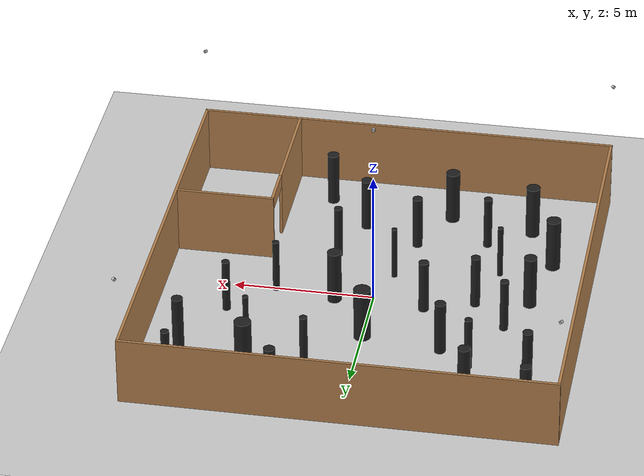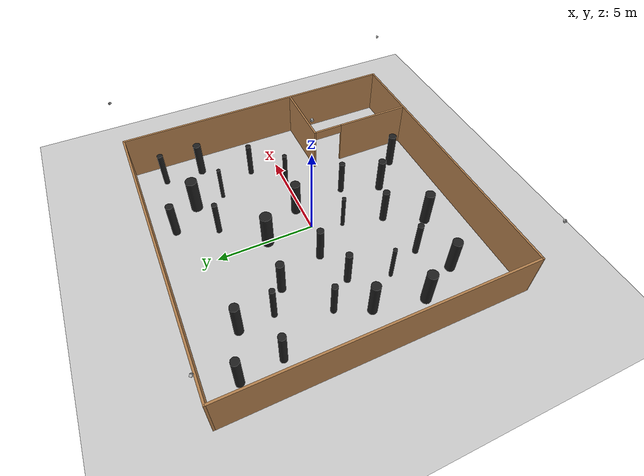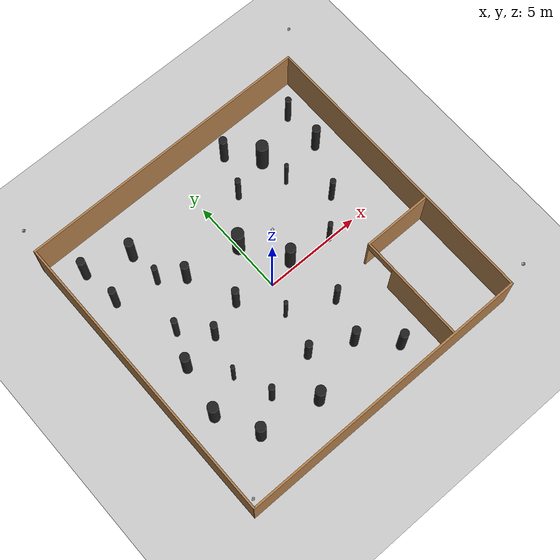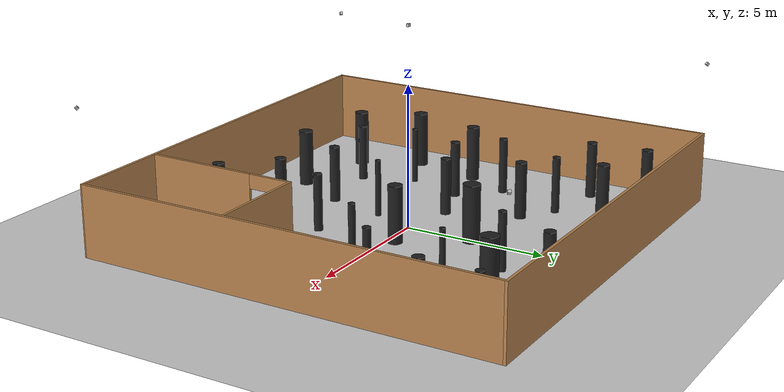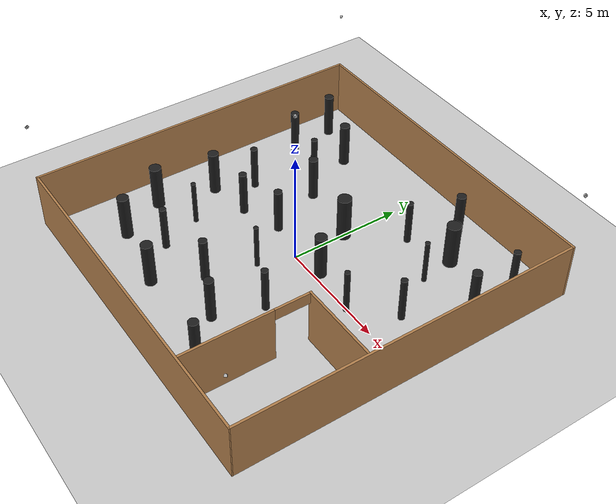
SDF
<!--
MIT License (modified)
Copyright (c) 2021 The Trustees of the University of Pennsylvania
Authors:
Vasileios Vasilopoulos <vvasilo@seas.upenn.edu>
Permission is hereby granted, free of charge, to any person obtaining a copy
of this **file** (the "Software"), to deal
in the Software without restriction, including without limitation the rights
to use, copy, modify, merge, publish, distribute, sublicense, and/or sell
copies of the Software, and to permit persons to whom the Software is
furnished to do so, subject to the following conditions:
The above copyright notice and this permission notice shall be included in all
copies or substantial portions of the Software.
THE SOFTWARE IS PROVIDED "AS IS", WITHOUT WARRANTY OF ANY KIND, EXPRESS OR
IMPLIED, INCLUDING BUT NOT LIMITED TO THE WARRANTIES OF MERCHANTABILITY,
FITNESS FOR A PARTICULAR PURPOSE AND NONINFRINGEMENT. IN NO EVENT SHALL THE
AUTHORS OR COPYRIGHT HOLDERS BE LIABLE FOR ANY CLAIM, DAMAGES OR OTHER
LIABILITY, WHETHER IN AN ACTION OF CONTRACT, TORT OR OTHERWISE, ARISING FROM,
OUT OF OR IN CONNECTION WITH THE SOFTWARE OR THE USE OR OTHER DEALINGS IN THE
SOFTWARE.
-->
<sdf version="1.6">
 <world name="default">
  <model name="ground_plane">
   <static>1</static>
   <link name="link">
    <collision name="collision">
     <geometry><plane><normal>0 0 1</normal><size>100 100</size></plane></geometry>
     <surface><friction><ode><mu>100</mu><mu2>50</mu2></ode></friction></surface>
    </collision>
    <visual name="visual">
     <cast_shadows>0</cast_shadows>
     <geometry><plane><normal>0 0 1</normal><size>100 100</size></plane></geometry>
     <material>
      <script><uri>file://media/materials/scripts/gazebo.material</uri><name>Gazebo/Grey</name></script>
     </material>
    </visual>
   </link>
  </model>
  <model name="building">
   <link name="Wall_0">
    <collision name="Wall_0_Collision">
     <geometry><box><size>15.1 0.1 2.5</size></box></geometry>
     <pose>0 0 1.25 0 -0 0</pose>
    </collision>
    <visual name="Wall_0_Visual">
     <pose>0 0 1.25 0 -0 0</pose>
     <geometry><box><size>15.1 0.1 2.5</size></box></geometry>
     <material>
      <script><uri>file://media/materials/scripts/gazebo.material</uri><name>Gazebo/Wood</name></script>
      <ambient>1 1 1 1</ambient>
     </material>
     <meta><layer>0</layer></meta>
    </visual>
    <pose>0 -7.5 0 0 -0 0</pose>
   </link>
   <link name="Wall_1">
    <collision name="Wall_1_Collision">
     <geometry><box><size>15 0.1 2.5</size></box></geometry>
     <pose>0 0 1.25 0 -0 0</pose>
    </collision>
    <visual name="Wall_1_Visual">
     <pose>0 0 1.25 0 -0 0</pose>
     <geometry><box><size>15 0.1 2.5</size></box></geometry>
     <material>
      <script><uri>file://media/materials/scripts/gazebo.material</uri><name>Gazebo/Wood</name></script>
      <ambient>1 1 1 1</ambient>
     </material>
     <meta><layer>0</layer></meta>
    </visual>
    <pose>7.5 0 0 0 -0 1.5708</pose>
   </link>
   <link name="Wall_2">
    <collision name="Wall_2_Collision">
     <geometry><box><size>15.1 0.1 2.5</size></box></geometry>
     <pose>0 0 1.25 0 -0 0</pose>
    </collision>
    <visual name="Wall_2_Visual">
     <pose>0 0 1.25 0 -0 0</pose>
     <geometry><box><size>15.1 0.1 2.5</size></box></geometry>
     <material>
      <script><uri>file://media/materials/scripts/gazebo.material</uri><name>Gazebo/Wood</name></script>
      <ambient>1 1 1 1</ambient>
     </material>
     <meta><layer>0</layer></meta>
    </visual>
    <pose>0 7.5 0 0 -0 3.14159</pose>
   </link>
   <link name="Wall_3">
    <collision name="Wall_3_Collision">
     <geometry><box><size>15 0.1 2.5</size></box></geometry>
     <pose>0 0 1.25 0 -0 0</pose>
    </collision>
    <visual name="Wall_3_Visual">
     <pose>0 0 1.25 0 -0 0</pose>
     <geometry><box><size>15 0.1 2.5</size></box></geometry>
     <material>
      <script><uri>file://media/materials/scripts/gazebo.material</uri><name>Gazebo/Wood</name></script>
      <ambient>1 1 1 1</ambient>
     </material>
     <meta><layer>0</layer></meta>
    </visual>
    <pose>-7.5 0 0 0 -0 -1.5708</pose>
   </link>
   <link name="Wall_4">
    <collision name="Wall_4_Collision">
     <geometry><box><size>0.1 3.5 2.5</size></box></geometry>
     <pose>0 0 1.25 0 -0 0</pose>
    </collision>
    <visual name="Wall_4_Visual">
     <pose>0 0 1.25 0 -0 0</pose>
     <geometry><box><size>0.1 3.5 2.5</size></box></geometry>
     <material>
      <script><uri>file://media/materials/scripts/gazebo.material</uri><name>Gazebo/Wood</name></script>
      <ambient>1 1 1 1</ambient>
     </material>
     <meta><layer>0</layer></meta>
    </visual>
    <pose>5.7 -2 0 0 -0 -1.5708</pose>
   </link>
   <link name="Wall_5a">
    <collision name="Wall_5a_Collision">
     <geometry><box><size>3.9 0.1 2.5</size></box></geometry>
     <pose>0 0 1.25 0 -0 0</pose>
    </collision>
    <visual name="Wall_5a_Visual">
     <pose>0 0 1.25 0 -0 0</pose>
     <geometry><box><size>3.9 0.1 2.5</size></box></geometry>
     <material>
      <script><uri>file://media/materials/scripts/gazebo.material</uri><name>Gazebo/Wood</name></script>
      <ambient>1 1 1 1</ambient>
     </material>
     <meta><layer>0</layer></meta>
    </visual>
    <pose>4 -5.5 0 0 -0 -1.5708</pose>
   </link>
   <link name="Wall_5b">
    <collision name="Wall_5b_Collision">
     <geometry><box><size>1.5 0.1 0.5</size></box></geometry>
     <pose>0 0 2.25 0 -0 0</pose>
    </collision>
    <visual name="Wall_5b_Visual">
     <pose>0 0 2.25 0 -0 0</pose>
     <geometry><box><size>1.5 0.1 0.5</size></box></geometry>
     <material>
      <script><uri>file://media/materials/scripts/gazebo.material</uri><name>Gazebo/Wood</name></script>
      <ambient>1 1 1 1</ambient>
     </material>
     <meta><layer>0</layer></meta>
    </visual>
    <pose>4 -2.8 0 0 -0 -1.5708</pose>
   </link>
   <static>1</static>
  </model>
  <model name="cylinder_1">
   <link name="link_0">
    <pose>-5 -5 1 0 -0 0</pose>
    <visual name="visual">
     <geometry><cylinder><radius>0.25</radius><length>2</length></cylinder></geometry>
     <material>
      <lighting>1</lighting>
      <script><uri>file://media/materials/scripts/gazebo.material</uri><name>Gazebo/Black</name></script>
      <shader type="pixel"/>
     </material>
    </visual>
    <collision name="collision">
     <geometry><cylinder><radius>0.25</radius><length>2</length></cylinder></geometry>
    </collision>
   </link>
   <static>1</static>
  </model>
  <model name="cylinder_2">
   <link name="link_0">
    <pose>-3.5 -4 1 0 -0 0</pose>
    <visual name="visual">
     <geometry><cylinder><radius>0.15</radius><length>2</length></cylinder></geometry>
     <material>
      <lighting>1</lighting>
      <script><uri>file://media/materials/scripts/gazebo.material</uri><name>Gazebo/Black</name></script>
      <shader type="pixel"/>
     </material>
    </visual>
    <collision name="collision">
     <geometry><cylinder><radius>0.15</radius><length>2</length></cylinder></geometry>
    </collision>
   </link>
   <static>1</static>
  </model>
  <model name="cylinder_3">
   <link name="link_0">
    <pose>-6 -3 1 0 -0 0</pose>
    <visual name="visual">
     <geometry><cylinder><radius>0.26</radius><length>2</length></cylinder></geometry>
     <material>
      <lighting>1</lighting>
      <script><uri>file://media/materials/scripts/gazebo.material</uri><name>Gazebo/Black</name></script>
      <shader type="pixel"/>
     </material>
    </visual>
    <collision name="collision">
     <geometry><cylinder><radius>0.26</radius><length>2</length></cylinder></geometry>
    </collision>
   </link>
   <static>1</static>
  </model>
  <model name="cylinder_4">
   <link name="link_0">
    <pose>-2 -5.5 1 0 -0 0</pose>
    <visual name="visual">
     <geometry><cylinder><radius>0.25</radius><length>2</length></cylinder></geometry>
     <material>
      <lighting>1</lighting>
      <script><uri>file://media/materials/scripts/gazebo.material</uri><name>Gazebo/Black</name></script>
      <shader type="pixel"/>
     </material>
    </visual>
    <collision name="collision">
     <geometry><cylinder><radius>0.25</radius><length>2</length></cylinder></geometry>
    </collision>
   </link>
   <static>1</static>
  </model>
  <model name="cylinder_5">
   <link name="link_0">
    <pose>-5.5 -0.5 1 0 -0 0</pose>
    <visual name="visual">
     <geometry><cylinder><radius>0.23</radius><length>2</length></cylinder></geometry>
     <material>
      <lighting>1</lighting>
      <script><uri>file://media/materials/scripts/gazebo.material</uri><name>Gazebo/Black</name></script>
      <shader type="pixel"/>
     </material>
    </visual>
    <collision name="collision">
     <geometry><cylinder><radius>0.23</radius><length>2</length></cylinder></geometry>
    </collision>
   </link>
   <static>1</static>
  </model>
  <model name="cylinder_6">
   <link name="link_0">
    <pose>-2.8 2.8 1 0 -0 0</pose>
    <visual name="visual">
     <geometry><cylinder><radius>0.2</radius><length>2</length></cylinder></geometry>
     <material>
      <lighting>1</lighting>
      <script><uri>file://media/materials/scripts/gazebo.material</uri><name>Gazebo/Black</name></script>
      <shader type="pixel"/>
     </material>
    </visual>
    <collision name="collision">
     <geometry><cylinder><radius>0.2</radius><length>2</length></cylinder></geometry>
    </collision>
   </link>
   <static>1</static>
  </model>
  <model name="cylinder_7">
   <link name="link_0">
    <pose>-4.2 -2.2 1 0 -0 0</pose>
    <visual name="visual">
     <geometry><cylinder><radius>0.1</radius><length>2</length></cylinder></geometry>
     <material>
      <lighting>1</lighting>
      <script><uri>file://media/materials/scripts/gazebo.material</uri><name>Gazebo/Black</name></script>
      <shader type="pixel"/>
     </material>
    </visual>
    <collision name="collision">
     <geometry><cylinder><radius>0.1</radius><length>2</length></cylinder></geometry>
    </collision>
   </link>
   <static>1</static>
  </model>
  <model name="cylinder_8">
   <link name="link_0">
    <pose>0 2.4 1 0 -0 0</pose>
    <visual name="visual">
     <geometry><cylinder><radius>0.3</radius><length>2</length></cylinder></geometry>
     <material>
      <lighting>1</lighting>
      <script><uri>file://media/materials/scripts/gazebo.material</uri><name>Gazebo/Black</name></script>
      <shader type="pixel"/>
     </material>
    </visual>
    <collision name="collision">
     <geometry><cylinder><radius>0.3</radius><length>2</length></cylinder></geometry>
    </collision>
   </link>
   <static>1</static>
  </model>
  <model name="cylinder_9">
   <link name="link_0">
    <pose>1.7 -2.5 1 0 -0 0</pose>
    <visual name="visual">
     <geometry><cylinder><radius>0.15</radius><length>2</length></cylinder></geometry>
     <material>
      <lighting>1</lighting>
      <script><uri>file://media/materials/scripts/gazebo.material</uri><name>Gazebo/Black</name></script>
      <shader type="pixel"/>
     </material>
    </visual>
    <collision name="collision">
     <geometry><cylinder><radius>0.3</radius><length>2</length></cylinder></geometry>
    </collision>
   </link>
   <static>1</static>
  </model>
  <model name="cylinder_10">
   <link name="link_0">
    <pose>5 1.5 1 0 -0 0</pose>
    <visual name="visual">
     <geometry><cylinder><radius>0.14</radius><length>2</length></cylinder></geometry>
     <material>
      <lighting>1</lighting>
      <script><uri>file://media/materials/scripts/gazebo.material</uri><name>Gazebo/Black</name></script>
      <shader type="pixel"/>
     </material>
    </visual>
    <collision name="collision">
     <geometry><cylinder><radius>0.14</radius><length>2</length></cylinder></geometry>
    </collision>
   </link>
   <static>1</static>
  </model>
  <model name="cylinder_11">
   <link name="link_0">
    <pose>1.7 4.4 1 0 -0 0</pose>
    <visual name="visual">
     <geometry><cylinder><radius>0.14</radius><length>2</length></cylinder></geometry>
     <material>
      <lighting>1</lighting>
      <script><uri>file://media/materials/scripts/gazebo.material</uri><name>Gazebo/Black</name></script>
      <shader type="pixel"/>
     </material>
    </visual>
    <collision name="collision">
     <geometry><cylinder><radius>0.14</radius><length>2</length></cylinder></geometry>
    </collision>
   </link>
   <static>1</static>
  </model>
  <model name="cylinder_12">
   <link name="link_0">
    <pose>2.5 6.4 1 0 -0 0</pose>
    <visual name="visual">
     <geometry><cylinder><radius>0.2</radius><length>2</length></cylinder></geometry>
     <material>
      <lighting>1</lighting>
      <script><uri>file://media/materials/scripts/gazebo.material</uri><name>Gazebo/Black</name></script>
      <shader type="pixel"/>
     </material>
    </visual>
    <collision name="collision">
     <geometry><cylinder><radius>0.2</radius><length>2</length></cylinder></geometry>
    </collision>
   </link>
   <static>1</static>
  </model>
  <model name="cylinder_13">
   <link name="link_0">
    <pose>3.7 5 1 0 -0 0</pose>
    <visual name="visual">
     <geometry><cylinder><radius>0.3</radius><length>2</length></cylinder></geometry>
     <material>
      <lighting>1</lighting>
      <script><uri>file://media/materials/scripts/gazebo.material</uri><name>Gazebo/Black</name></script>
      <shader type="pixel"/>
     </material>
    </visual>
    <collision name="collision">
     <geometry><cylinder><radius>0.3</radius><length>2</length></cylinder></geometry>
    </collision>
   </link>
   <static>1</static>
  </model>
  <model name="cylinder_14">
   <link name="link_0">
    <pose>3.9 3.5 1 0 -0 0</pose>
    <visual name="visual">
     <geometry><cylinder><radius>0.1</radius><length>2</length></cylinder></geometry>
     <material>
      <lighting>1</lighting>
      <script><uri>file://media/materials/scripts/gazebo.material</uri><name>Gazebo/Black</name></script>
      <shader type="pixel"/>
     </material>
    </visual>
    <collision name="collision">
     <geometry><cylinder><radius>0.1</radius><length>2</length></cylinder></geometry>
    </collision>
   </link>
   <static>1</static>
  </model>
  <model name="cylinder_15">
   <link name="link_0">
    <pose>6.2 6 1 0 -0 0</pose>
    <visual name="visual">
     <geometry><cylinder><radius>0.15</radius><length>2</length></cylinder></geometry>
     <material>
      <lighting>1</lighting>
      <script><uri>file://media/materials/scripts/gazebo.material</uri><name>Gazebo/Black</name></script>
      <shader type="pixel"/>
     </material>
    </visual>
    <collision name="collision">
     <geometry><cylinder><radius>0.15</radius><length>2</length></cylinder></geometry>
    </collision>
   </link>
   <static>1</static>
  </model>
  <model name="cylinder_16">
   <link name="link_0">
    <pose>6.2 4 1 0 -0 0</pose>
    <visual name="visual">
     <geometry><cylinder><radius>0.2</radius><length>2</length></cylinder></geometry>
     <material>
      <lighting>1</lighting>
      <script><uri>file://media/materials/scripts/gazebo.material</uri><name>Gazebo/Black</name></script>
      <shader type="pixel"/>
     </material>
    </visual>
    <collision name="collision">
     <geometry><cylinder><radius>0.2</radius><length>2</length></cylinder></geometry>
    </collision>
   </link>
   <static>1</static>
  </model>
  <model name="cylinder_17">
   <link name="link_0">
    <pose>-0.5 -1.5 1 0 -0 0</pose>
    <visual name="visual">
     <geometry><cylinder><radius>0.1</radius><length>2</length></cylinder></geometry>
     <material>
      <lighting>1</lighting>
      <script><uri>file://media/materials/scripts/gazebo.material</uri><name>Gazebo/Black</name></script>
      <shader type="pixel"/>
     </material>
    </visual>
    <collision name="collision">
     <geometry><cylinder><radius>0.1</radius><length>2</length></cylinder></geometry>
    </collision>
   </link>
   <static>1</static>
  </model>
  <model name="cylinder_18">
   <link name="link_0">
    <pose>-4 5.3 1 0 -0 0</pose>
    <visual name="visual">
     <geometry><cylinder><radius>0.22</radius><length>2</length></cylinder></geometry>
     <material>
      <lighting>1</lighting>
      <script><uri>file://media/materials/scripts/gazebo.material</uri><name>Gazebo/Black</name></script>
      <shader type="pixel"/>
     </material>
    </visual>
    <collision name="collision">
     <geometry><cylinder><radius>0.22</radius><length>2</length></cylinder></geometry>
    </collision>
   </link>
   <static>1</static>
  </model>
  <model name="cylinder_19">
   <link name="link_0">
    <pose>-3.9 3.6 1 0 -0 0</pose>
    <visual name="visual">
     <geometry><cylinder><radius>0.14</radius><length>2</length></cylinder></geometry>
     <material>
      <lighting>1</lighting>
      <script><uri>file://media/materials/scripts/gazebo.material</uri><name>Gazebo/Black</name></script>
      <shader type="pixel"/>
     </material>
    </visual>
    <collision name="collision">
     <geometry><cylinder><radius>0.14</radius><length>2</length></cylinder></geometry>
    </collision>
   </link>
   <static>1</static>
  </model>
  <model name="cylinder_20">
   <link name="link_0">
    <pose>-6.2 6 1 0 -0 0</pose>
    <visual name="visual">
     <geometry><cylinder><radius>0.2</radius><length>2</length></cylinder></geometry>
     <material>
      <lighting>1</lighting>
      <script><uri>file://media/materials/scripts/gazebo.material</uri><name>Gazebo/Black</name></script>
      <shader type="pixel"/>
     </material>
    </visual>
    <collision name="collision">
     <geometry><cylinder><radius>0.2</radius><length>2</length></cylinder></geometry>
    </collision>
   </link>
   <static>1</static>
  </model>
  <model name="cylinder_21">
   <link name="link_0">
    <pose>-6 4 1 0 -0 0</pose>
    <visual name="visual">
     <geometry><cylinder><radius>0.18</radius><length>2</length></cylinder></geometry>
     <material>
      <lighting>1</lighting>
      <script><uri>file://media/materials/scripts/gazebo.material</uri><name>Gazebo/Black</name></script>
      <shader type="pixel"/>
     </material>
    </visual>
    <collision name="collision">
     <geometry><cylinder><radius>0.18</radius><length>2</length></cylinder></geometry>
    </collision>
   </link>
   <static>1</static>
  </model>
  <model name="cylinder_22">
   <link name="link_0">
    <pose>-1.85 0.4 1 0 -0 0</pose>
    <visual name="visual">
     <geometry><cylinder><radius>0.18</radius><length>2</length></cylinder></geometry>
     <material>
      <lighting>1</lighting>
      <script><uri>file://media/materials/scripts/gazebo.material</uri><name>Gazebo/Black</name></script>
      <shader type="pixel"/>
     </material>
    </visual>
    <collision name="collision">
     <geometry><cylinder><radius>0.18</radius><length>2</length></cylinder></geometry>
    </collision>
   </link>
   <static>1</static>
  </model>
  <model name="cylinder_23">
   <link name="link_0">
    <pose>1.35 0.3 1 0 -0 0</pose>
    <visual name="visual">
     <geometry><cylinder><radius>0.25</radius><length>2</length></cylinder></geometry>
     <material>
      <lighting>1</lighting>
      <script><uri>file://media/materials/scripts/gazebo.material</uri><name>Gazebo/Black</name></script>
      <shader type="pixel"/>
     </material>
    </visual>
    <collision name="collision">
     <geometry><cylinder><radius>0.25</radius><length>2</length></cylinder></geometry>
    </collision>
   </link>
   <static>1</static>
  </model>
  <model name="cylinder_24">
   <link name="link_0">
    <pose>3.5 0 1 0 -0 0</pose>
    <visual name="visual">
     <geometry><cylinder><radius>0.12</radius><length>2</length></cylinder></geometry>
     <material>
      <lighting>1</lighting>
      <script><uri>file://media/materials/scripts/gazebo.material</uri><name>Gazebo/Black</name></script>
      <shader type="pixel"/>
     </material>
    </visual>
    <collision name="collision">
     <geometry><cylinder><radius>0.12</radius><length>2</length></cylinder></geometry>
    </collision>
   </link>
   <static>1</static>
  </model>
  <model name="cylinder_25">
   <link name="link_0">
    <pose>-3.6 -0.2 1 0 -0 0</pose>
    <visual name="visual">
     <geometry><cylinder><radius>0.17</radius><length>2</length></cylinder></geometry>
     <material>
      <lighting>1</lighting>
      <script><uri>file://media/materials/scripts/gazebo.material</uri><name>Gazebo/Black</name></script>
      <shader type="pixel"/>
     </material>
    </visual>
    <collision name="collision">
     <geometry><cylinder><radius>0.17</radius><length>2</length></cylinder></geometry>
    </collision>
   </link>
   <static>1</static>
  </model>
  <model name="cylinder_26">
   <link name="link_0">
    <pose>-4.8 1.1 1 0 -0 0</pose>
    <visual name="visual">
     <geometry><cylinder><radius>0.15</radius><length>2</length></cylinder></geometry>
     <material>
      <lighting>1</lighting>
      <script><uri>file://media/materials/scripts/gazebo.material</uri><name>Gazebo/Black</name></script>
      <shader type="pixel"/>
     </material>
    </visual>
    <collision name="collision">
     <geometry><cylinder><radius>0.15</radius><length>2</length></cylinder></geometry>
    </collision>
   </link>
   <static>1</static>
  </model>
  <model name="cylinder_27">
   <link name="link_0">
    <pose>-1 -3.6 1 0 -0 0</pose>
    <visual name="visual">
     <geometry><cylinder><radius>0.18</radius><length>2</length></cylinder></geometry>
     <material>
      <lighting>1</lighting>
      <script><uri>file://media/materials/scripts/gazebo.material</uri><name>Gazebo/Black</name></script>
      <shader type="pixel"/>
     </material>
    </visual>
    <collision name="collision">
     <geometry><cylinder><radius>0.18</radius><length>2</length></cylinder></geometry>
    </collision>
   </link>
   <static>1</static>
  </model>
  <model name="cylinder_28">
   <link name="link_0">
    <pose>1 -4.5 1 0 -0 0</pose>
    <visual name="visual">
     <geometry><cylinder><radius>0.2</radius><length>2</length></cylinder></geometry>
     <material>
      <lighting>1</lighting>
      <script><uri>file://media/materials/scripts/gazebo.material</uri><name>Gazebo/Black</name></script>
      <shader type="pixel"/>
     </material>
    </visual>
    <collision name="collision">
     <geometry><cylinder><radius>0.2</radius><length>2</length></cylinder></geometry>
    </collision>
   </link>
   <static>1</static>
  </model>
  <model name="cylinder_29">
   <link name="link_0">
    <pose>2.5 -6 1 0 -0 0</pose>
    <visual name="visual">
     <geometry><cylinder><radius>0.21</radius><length>2</length></cylinder></geometry>
     <material>
      <lighting>1</lighting>
      <script><uri>file://media/materials/scripts/gazebo.material</uri><name>Gazebo/Black</name></script>
      <shader type="pixel"/>
     </material>
    </visual>
    <collision name="collision">
     <geometry><cylinder><radius>0.21</radius><length>2</length></cylinder></geometry>
    </collision>
   </link>
   <static>1</static>
  </model>
  <model name="camera1">
   <static>true</static>
   <pose>-7.5 -7.5 5 0 0.86 0.72</pose>
   <link name="link">
    <visual name="visual">
     <cast_shadows>0</cast_shadows>
     <geometry><box><size>0.1 0.1 0.1</size></box></geometry>
    </visual>
    <sensor name="my_camera" type="camera">
     <camera>
      <save enabled="true"><path>/home/kodlab/gazebo_camera_1</path></save>
      <horizontal_fov>1.5</horizontal_fov>
      <image><width>1920</width><height>1080</height></image>
      <clip><near>0.1</near><far>100</far></clip>
     </camera>
     <always_on>1</always_on>
     <update_rate>30</update_rate>
    </sensor>
   </link>
  </model>
  <model name="camera2">
   <static>true</static>
   <pose>7.5 -7.5 5 0 0.86 2.42</pose>
   <link name="link">
    <visual name="visual">
     <cast_shadows>0</cast_shadows>
     <geometry><box><size>0.1 0.1 0.1</size></box></geometry>
    </visual>
    <sensor name="my_camera" type="camera">
     <camera>
      <save enabled="true"><path>/home/kodlab/gazebo_camera_2</path></save>
      <horizontal_fov>1.5</horizontal_fov>
      <image><width>1920</width><height>1080</height></image>
      <clip><near>0.1</near><far>100</far></clip>
     </camera>
     <always_on>1</always_on>
     <update_rate>30</update_rate>
    </sensor>
   </link>
  </model>
  <model name="camera3">
   <static>true</static>
   <pose>7.5 7.5 5 0 0.86 -2.42</pose>
   <link name="link">
    <visual name="visual">
     <cast_shadows>0</cast_shadows>
     <geometry><box><size>0.1 0.1 0.1</size></box></geometry>
    </visual>
    <sensor name="my_camera" type="camera">
     <camera>
      <save enabled="true"><path>/home/kodlab/gazebo_camera_3</path></save>
      <horizontal_fov>1.5</horizontal_fov>
      <image><width>1920</width><height>1080</height></image>
      <clip><near>0.1</near><far>100</far></clip>
     </camera>
     <always_on>1</always_on>
     <update_rate>30</update_rate>
    </sensor>
   </link>
  </model>
  <model name="camera4">
   <static>true</static>
   <pose>-7.5 7.5 5 0 0.86 -0.72</pose>
   <link name="link">
    <visual name="visual">
     <cast_shadows>0</cast_shadows>
     <geometry><box><size>0.1 0.1 0.1</size></box></geometry>
    </visual>
    <sensor name="my_camera" type="camera">
     <camera>
      <save enabled="true"><path>/home/kodlab/gazebo_camera_4</path></save>
      <horizontal_fov>1.5</horizontal_fov>
      <image><width>1920</width><height>1080</height></image>
      <clip><near>0.1</near><far>100</far></clip>
     </camera>
     <always_on>1</always_on>
     <update_rate>30</update_rate>
    </sensor>
   </link>
  </model>
  <model name="camera5">
   <static>true</static>
   <pose>0 0 7 0 1.57 0</pose>
   <link name="link">
    <visual name="visual">
     <cast_shadows>0</cast_shadows>
     <geometry><box><size>0.1 0.1 0.1</size></box></geometry>
    </visual>
    <sensor name="my_camera" type="camera">
     <camera>
      <save enabled="true"><path>/home/kodlab/gazebo_camera_5</path></save>
      <horizontal_fov>1.7</horizontal_fov>
      <image><width>1920</width><height>1920</height></image>
      <clip><near>0.1</near><far>100</far></clip>
     </camera>
     <always_on>1</always_on>
     <update_rate>30</update_rate>
    </sensor>
   </link>
  </model>
 </world>
</sdf>
